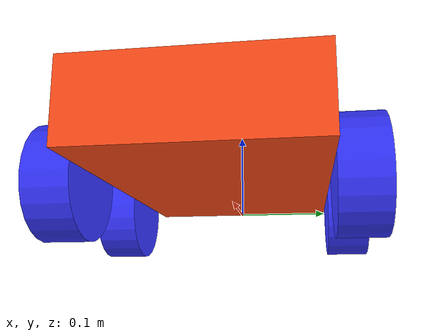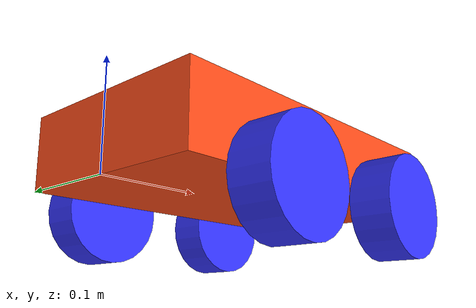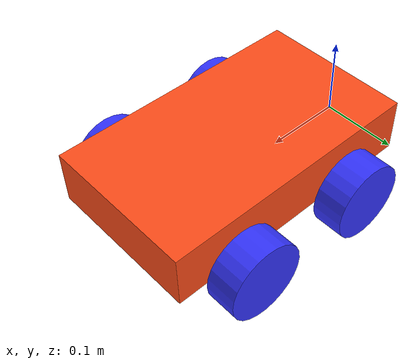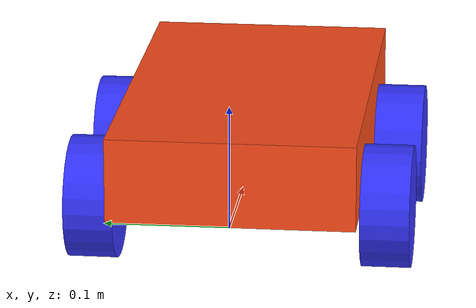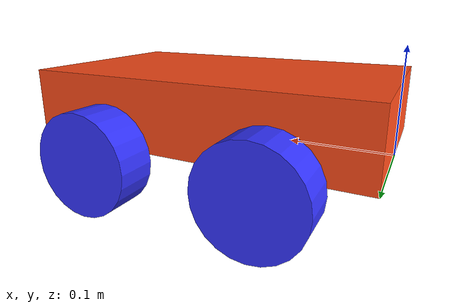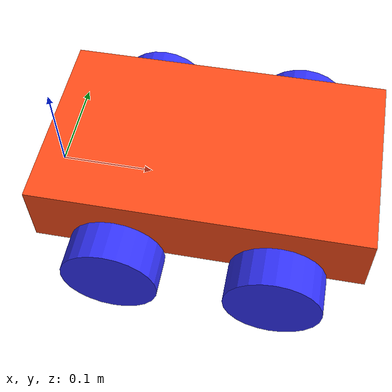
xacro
<?xml version="1.0"?>
<robot xmlns:xacro="http://www.ros.org/wiki/xacro" >

    <xacro:include filename="inertial_macros.xacro"/>

    <!-- Properties -->
    <xacro:property name="chassis_length" value="0.34"/>
    <xacro:property name="chassis_width" value="0.2"/>
    <xacro:property name="chassis_height" value="0.07"/>
    <xacro:property name="chassis_mass" value="1.0"/>
    <xacro:property name="wheel_radius" value="0.05"/>
    <xacro:property name="wheel_thickness" value="0.04"/>
    <xacro:property name="wheel_mass" value="0.7"/>
    <xacro:property name="wheel_offset_x" value="0.087"/>
    <xacro:property name="wheel_offset_y" value="0.12"/>
    <xacro:property name="wheel_offset_z" value="-0.007"/>

    <!-- Materials -->
    <material name="white">
        <color rgba="1 1 1 1" />
    </material>

    <material name="orange">
        <color rgba="1 0.3 0.1 1"/>
    </material>

    <material name="blue">
        <color rgba="0.2 0.2 1 1"/>
    </material>

    <material name="black">
        <color rgba="0 0 0 1"/>
    </material>

    <material name="red">
        <color rgba="1 0 0 1"/>
    </material>

    <!-- BASE LINK -->
    <link name="base_link">
    </link>

    <!-- BASE_FOOTPRINT LINK -->
    <joint name="base_footprint_joint" type="fixed">
        <parent link="base_link"/>
        <child link="base_footprint"/>
        <origin xyz="0 0 0" rpy="0 0 0"/>
    </joint>

    <link name="base_footprint">
    </link>

    <!-- CHASSIS LINK -->
    <joint name="chassis_joint" type="fixed">
        <parent link="base_link"/>
        <child link="chassis"/>
        <origin xyz="0 0 0"/>
    </joint>

    <link name="chassis">
        <visual>
            <origin xyz="${chassis_length/2} 0 ${chassis_height/2}"/>
            <geometry>
                <box size="${chassis_length} ${chassis_width} ${chassis_height}"/>
            </geometry>
            <material name="orange"/>
        </visual>
        <collision>
            <origin xyz="${chassis_length/2} 0 ${chassis_height/2}"/>
            <geometry>
                <box size="${chassis_length} ${chassis_width} ${chassis_height}"/>
            </geometry>
        </collision>
        <xacro:inertial_box mass="0.5" x="${chassis_length}" y="${chassis_width}" z="${chassis_height}">
            <origin xyz="${chassis_length/2} 0 ${chassis_height/2}" rpy="0 0 0"/>
        </xacro:inertial_box>
    </link>

    <gazebo reference="chassis">
        <material>Gazebo/Orange</material>
    </gazebo>

    <!-- FRONT LEFT WHEEL -->
    <joint name="left_wheel_joint_front" type="continuous">
        <parent link="chassis"/>
        <child link="left_wheel_front"/>
        <origin xyz="0.253 ${wheel_offset_y} ${wheel_offset_z}" rpy="-${pi/2} 0 0"/>
        <axis xyz="0 0 1"/>
    </joint>

    <link name="left_wheel_front">
        <visual>
            <geometry>
                <cylinder radius="${wheel_radius}" length="${wheel_thickness}"/>
            </geometry>
            <material name="blue"/>
        </visual>
        <collision>
            <geometry>
                <sphere radius="${wheel_radius}"/>
            </geometry>
        </collision>
        <xacro:inertial_cylinder mass="${wheel_mass}" length="${wheel_thickness}" radius="${wheel_radius}">
            <origin xyz="0 0 0" rpy="0 0 0"/>
        </xacro:inertial_cylinder>
    </link>

    <gazebo reference="left_wheel_front">
        <material>Gazebo/Blue</material>
    </gazebo>

    <!-- FRONT RIGHT WHEEL -->
    <joint name="right_wheel_joint_front" type="continuous">
        <parent link="chassis"/>
        <child link="right_wheel_front"/>
        <origin xyz="0.253 ${-wheel_offset_y} ${wheel_offset_z}" rpy="${pi/2} 0 0"/>
        <axis xyz="0 0 -1"/>
    </joint>

    <link name="right_wheel_front">
        <visual>
            <geometry>
                <cylinder radius="${wheel_radius}" length="${wheel_thickness}"/>
            </geometry>
            <material name="blue"/>
        </visual>
        <collision>
            <geometry>
                <sphere radius="${wheel_radius}"/>
            </geometry>
        </collision>
        <xacro:inertial_cylinder mass="${wheel_mass}" length="${wheel_thickness}" radius="${wheel_radius}">
            <origin xyz="0 0 0" rpy="0 0 0"/>
        </xacro:inertial_cylinder>
    </link>

    <gazebo reference="right_wheel_front">
        <material>Gazebo/Blue</material>
    </gazebo>

    <!-- REAR LEFT WHEEL -->
    <joint name="left_wheel_joint_rear" type="continuous">
        <parent link="chassis"/>
        <child link="left_wheel_rear"/>
        <origin xyz="${wheel_offset_x} ${wheel_offset_y} ${wheel_offset_z}" rpy="-${pi/2} 0 0"/>
        <axis xyz="0 0 1"/>
    </joint>

    <link name="left_wheel_rear">
        <visual>
            <geometry>
                <cylinder radius="${wheel_radius}" length="${wheel_thickness}"/>
            </geometry>
            <material name="blue"/>
        </visual>
        <collision>
            <geometry>
                <sphere radius="${wheel_radius}"/>
            </geometry>
        </collision>
        <xacro:inertial_cylinder mass="${wheel_mass}" length="${wheel_thickness}" radius="${wheel_radius}">
            <origin xyz="0 0 0" rpy="0 0 0"/>
        </xacro:inertial_cylinder>
    </link>

    <gazebo reference="left_wheel_rear">
        <material>Gazebo/Blue</material>
    </gazebo>

    <!-- REAR RIGHT WHEEL -->
    <joint name="right_wheel_joint_rear" type="continuous">
        <parent link="chassis"/>
        <child link="right_wheel_rear"/>
        <origin xyz="${wheel_offset_x} ${-wheel_offset_y} ${wheel_offset_z}" rpy="${pi/2} 0 0"/>
        <axis xyz="0 0 -1"/>
    </joint>

    <link name="right_wheel_rear">
        <visual>
            <geometry>
                <cylinder radius="${wheel_radius}" length="${wheel_thickness}"/>
            </geometry>
            <material name="blue"/>
        </visual>
        <collision>
            <geometry>
                <sphere radius="${wheel_radius}"/>
            </geometry>
        </collision>
        <xacro:inertial_cylinder mass="${wheel_mass}" length="${wheel_thickness}" radius="${wheel_radius}">
            <origin xyz="0 0 0" rpy="0 0 0"/>
        </xacro:inertial_cylinder>
    </link>

    <gazebo reference="right_wheel_rear">
        <material>Gazebo/Blue</material>
    </gazebo>

</robot>
